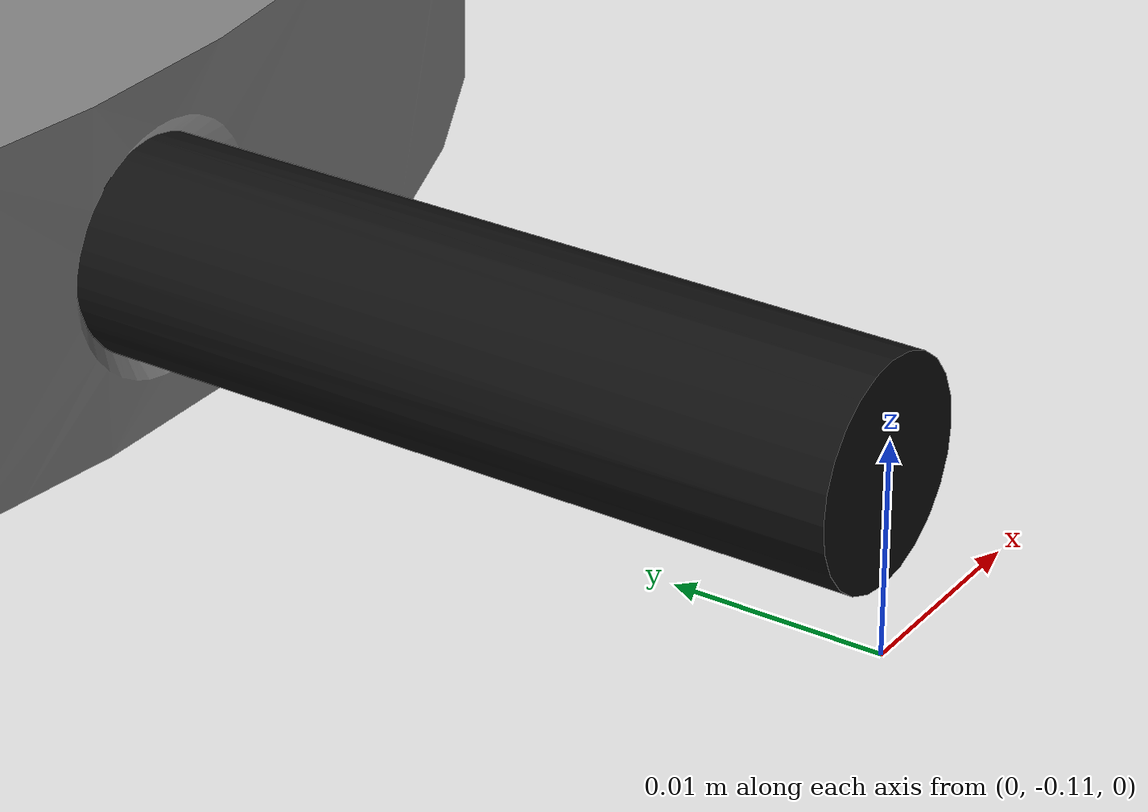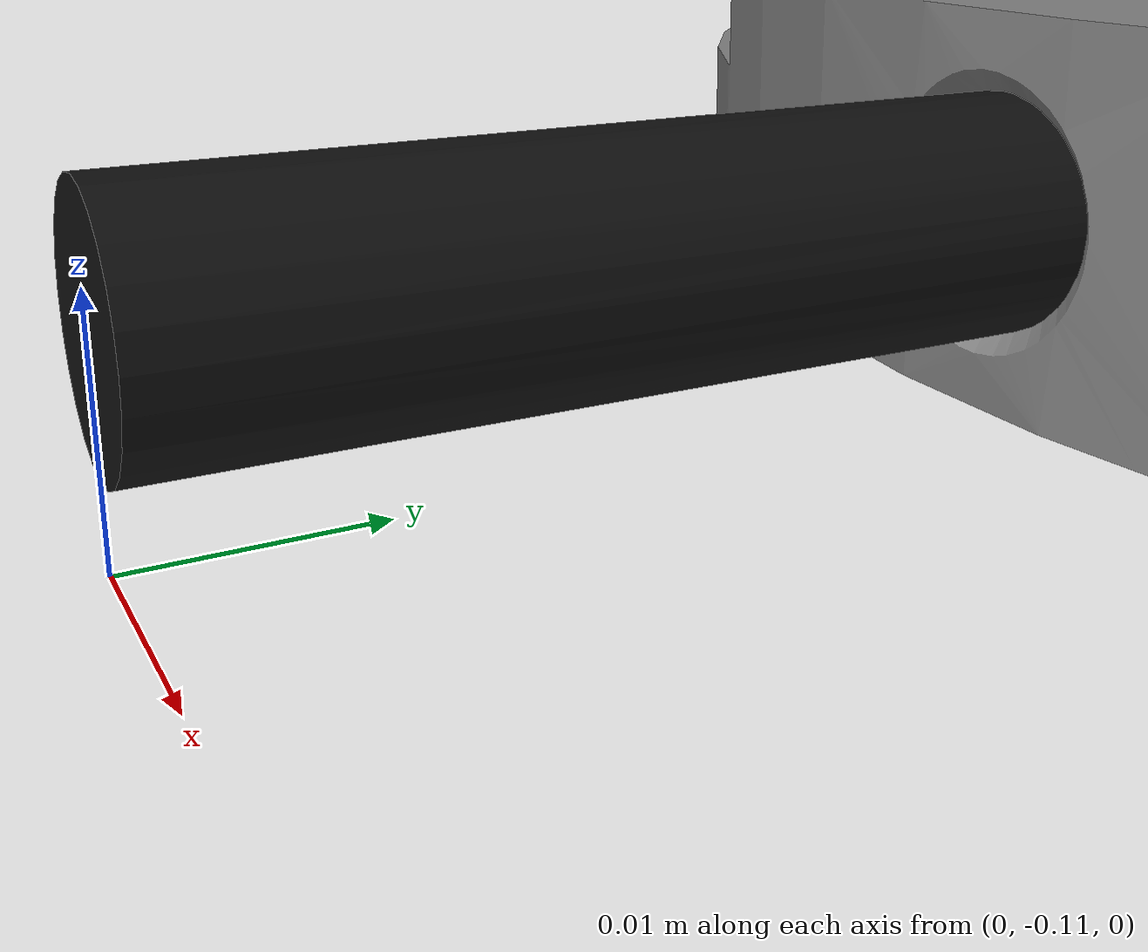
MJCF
<mujoco model="base">
  <default>
    <default class="visual">
      <geom group="2" type="mesh" contype="0" conaffinity="0"/>
    </default>
    <default class="collision">
      <geom group="3" type="mesh"/>
    </default>
  </default>
  <asset>
    <material name="material_base_0" specular="0.20000000000000004" shininess="1.0" rgba="0.52549020 0.52549020 0.52549020 1.0"/>
    <material name="material_base_1" specular="0.20000000000000004" shininess="1.0" rgba="0.06274510 0.06274510 0.06274510 1.0"/>
    <mesh file="base_0.obj"/>
    <mesh file="base_1.obj"/>
  </asset>
  <worldbody>
    <body name="base">
      <geom mesh="base_0" material="material_base_1" class="visual"/>
      <geom mesh="base_1" material="material_base_0" class="visual"/>
      <geom mesh="base_0" class="collision"/>
      <geom mesh="base_1" class="collision"/>
    </body>
  </worldbody>
</mujoco>
